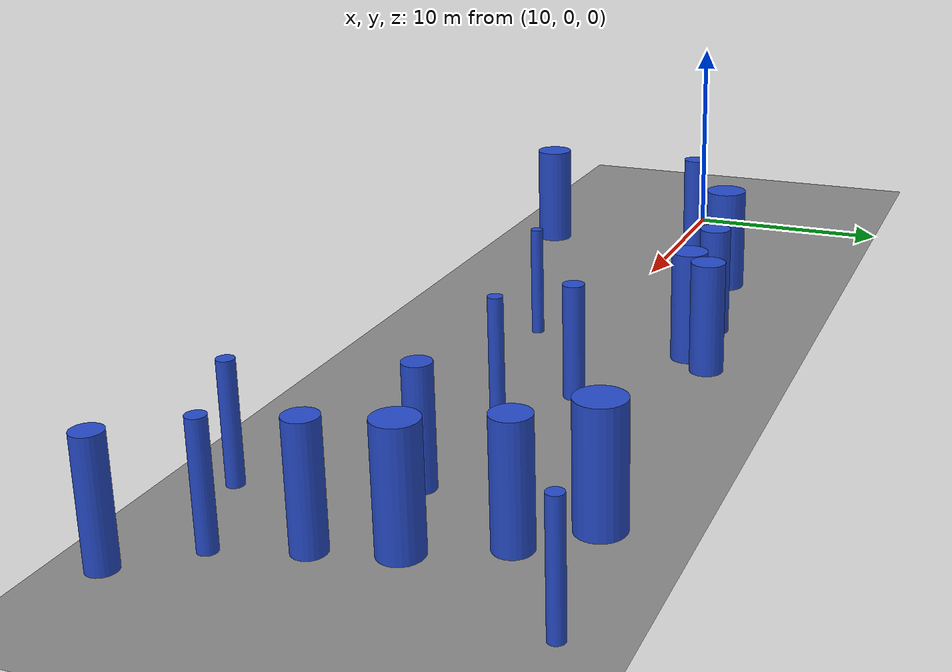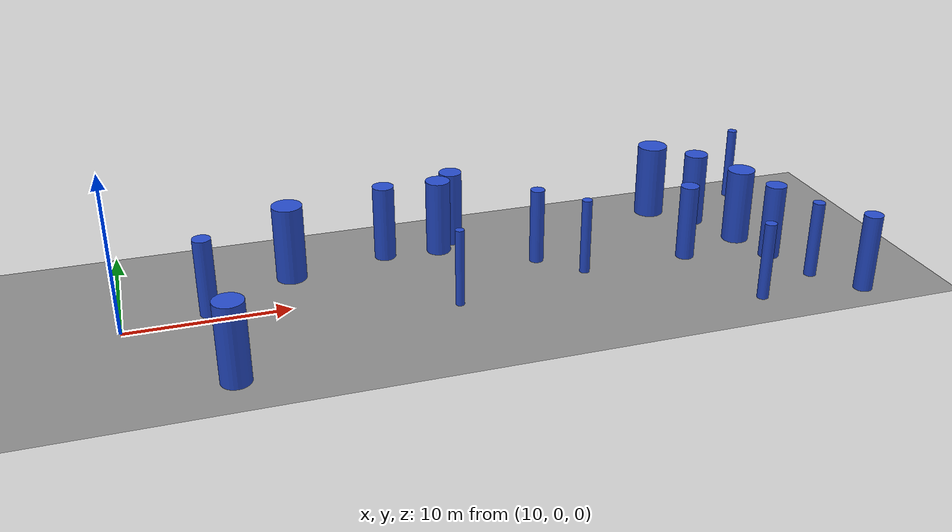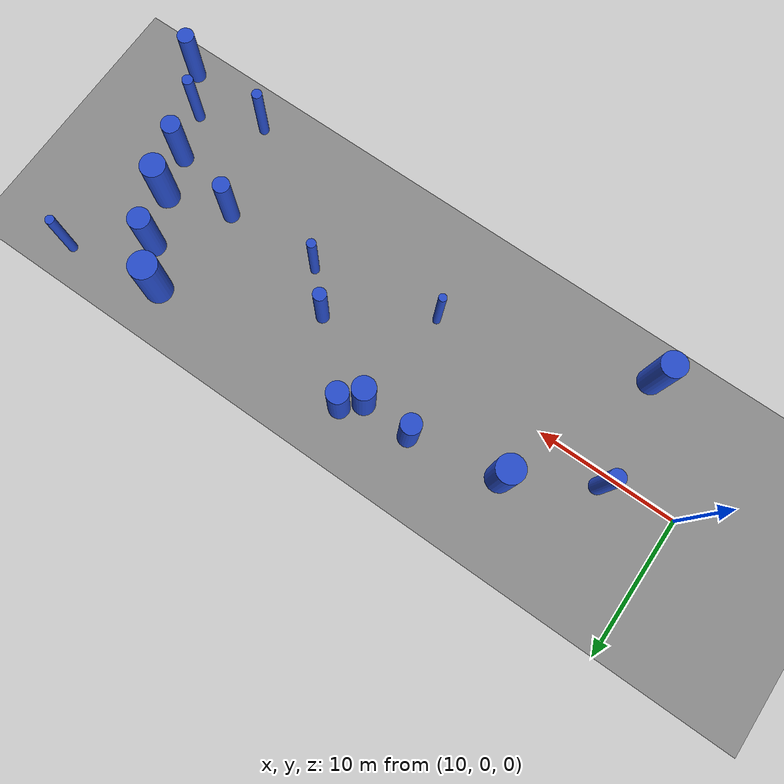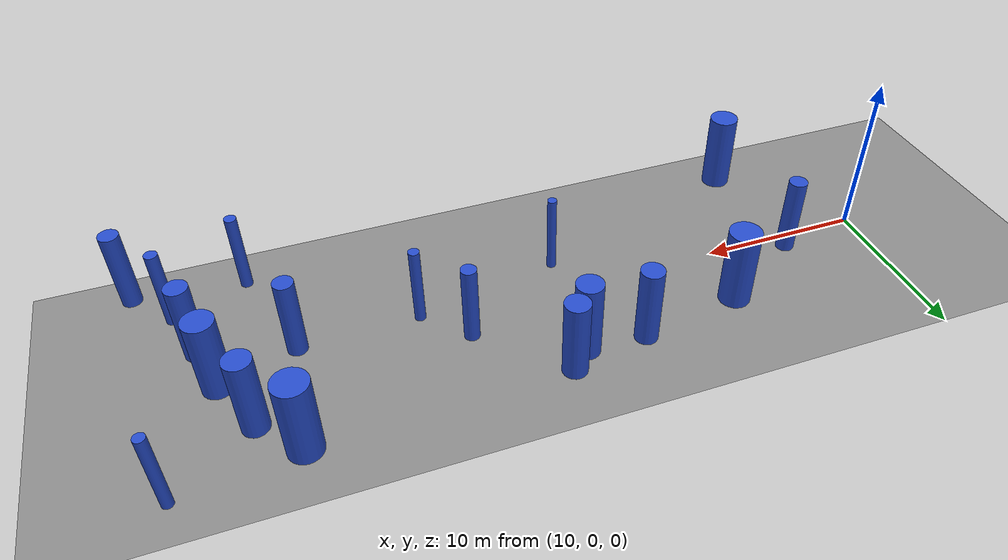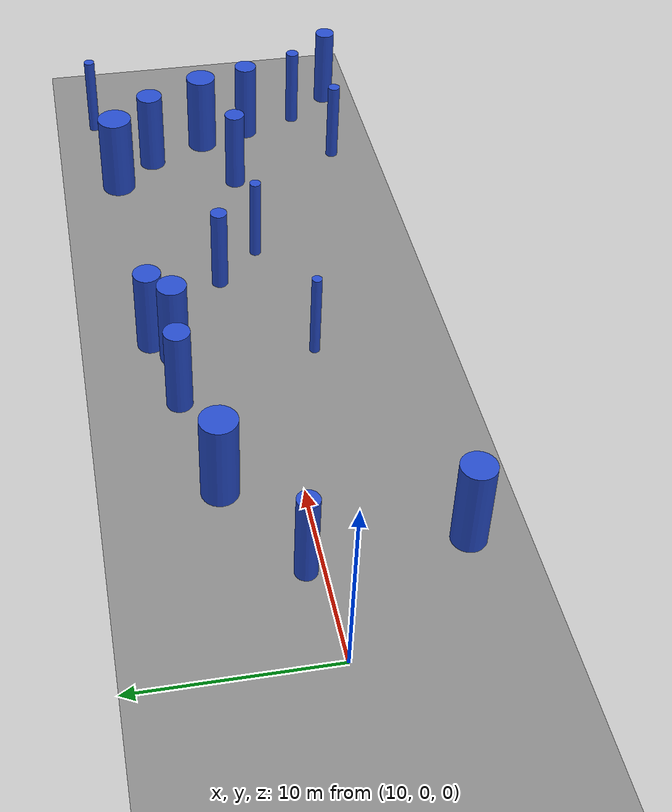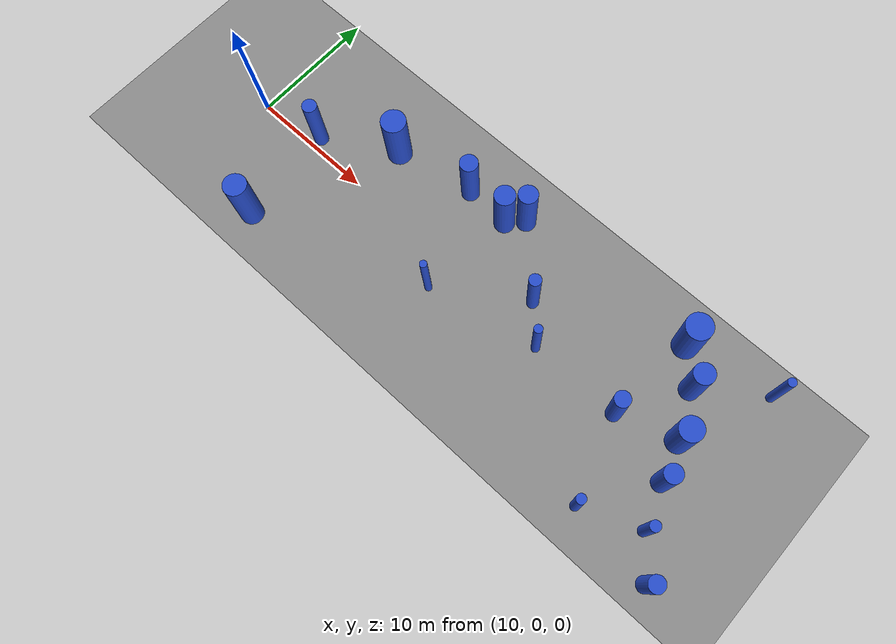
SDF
<sdf version="1.7">
 <world name="forest_randomization_v1">
  <gravity>0 0 -9.8</gravity>
  <light name="sun" type="directional">
   <pose>30 0 20 0 -0 0</pose>
   <diffuse>0.8 0.8 0.8 1</diffuse>
   <specular>0.2 0.2 0.2 1</specular>
   <direction>-0.5 0.5 -1</direction>
   <attenuation><range>10</range></attenuation>
   <spot><inner_angle>0</inner_angle><outer_angle>0</outer_angle><falloff>0</falloff></spot>
  </light>
  <model name="forest_ground_60x20">
   <static>1</static>
   <pose>30 0 0 0 -0 0</pose>
   <link name="link">
    <collision name="collision">
     <geometry><plane><normal>0 0 1</normal><size>60 20</size></plane></geometry>
    </collision>
    <visual name="visual">
     <cast_shadows>0</cast_shadows>
     <geometry><plane><normal>0 0 1</normal><size>60 20</size></plane></geometry>
     <material><ambient>0.45 0.45 0.45 1</ambient><diffuse>0.55 0.55 0.55 1</diffuse></material>
    </visual>
   </link>
  </model>
  <physics name="default_physics" type="ode">
   <max_step_size>0.001</max_step_size>
   <real_time_update_rate>1000</real_time_update_rate>
   <real_time_factor>1</real_time_factor>
  </physics>
  <scene>
   <ambient>0.4 0.4 0.4 1</ambient>
   <background>0.7 0.7 0.7 1</background>
   <shadows>1</shadows>
   <grid>1</grid>
  </scene>
  <magnetic_field>6e-06 2.3e-05 -4.2e-05</magnetic_field>
  <atmosphere type="adiabatic"/>
  <spherical_coordinates>
   <surface_model>EARTH_WGS84</surface_model>
   <latitude_deg>0</latitude_deg>
   <longitude_deg>0</longitude_deg>
   <elevation>0</elevation>
   <heading_deg>0</heading_deg>
  </spherical_coordinates>
  <model name="sparse_0">
   <static>0</static>
   <link name="link">
    <inertial>
     <mass>2</mass>
     <inertia><ixx>4.56643</ixx><ixy>0</ixy><ixz>0</ixz><iyy>4.56643</iyy><iyz>0</iyz><izz>0.799535</izz></inertia>
    </inertial>
    <collision name="collision">
     <geometry><cylinder><length>5</length><radius>0.894167</radius></cylinder></geometry>
     <surface><contact><collide_without_contact>1</collide_without_contact></contact></surface>
    </collision>
    <visual name="visual">
     <geometry><cylinder><length>5</length><radius>0.894167</radius></cylinder></geometry>
     <material>
      <script><uri>file://media/materials/scripts/gazebo.material</uri><name>Gazebo/Blue</name></script>
     </material>
    </visual>
    <gravity>0</gravity>
   </link>
   <pose>15.8183 -7.0455 2.5 0 -0 0</pose>
  </model>
  <model name="sparse_1">
   <static>0</static>
   <link name="link">
    <inertial>
     <mass>2</mass>
     <inertia><ixx>4.32672</ixx><ixy>0</ixy><ixz>0</ixz><iyy>4.32672</iyy><iyz>0</iyz><izz>0.320105</izz></inertia>
    </inertial>
    <collision name="collision">
     <geometry><cylinder><length>5</length><radius>0.565778</radius></cylinder></geometry>
     <surface><contact><collide_without_contact>1</collide_without_contact></contact></surface>
    </collision>
    <visual name="visual">
     <geometry><cylinder><length>5</length><radius>0.565778</radius></cylinder></geometry>
     <material>
      <script><uri>file://media/materials/scripts/gazebo.material</uri><name>Gazebo/Blue</name></script>
     </material>
    </visual>
    <gravity>0</gravity>
   </link>
   <pose>15.1477 0.882061 2.5 0 -0 0</pose>
  </model>
  <model name="sparse_2">
   <static>0</static>
   <link name="link">
    <inertial>
     <mass>2</mass>
     <inertia><ixx>4.63396</ixx><ixy>0</ixy><ixz>0</ixz><iyy>4.63396</iyy><iyz>0</iyz><izz>0.934591</izz></inertia>
    </inertial>
    <collision name="collision">
     <geometry><cylinder><length>5</length><radius>0.966742</radius></cylinder></geometry>
     <surface><contact><collide_without_contact>1</collide_without_contact></contact></surface>
    </collision>
    <visual name="visual">
     <geometry><cylinder><length>5</length><radius>0.966742</radius></cylinder></geometry>
     <material>
      <script><uri>file://media/materials/scripts/gazebo.material</uri><name>Gazebo/Blue</name></script>
     </material>
    </visual>
    <gravity>0</gravity>
   </link>
   <pose>20.5924 4.06393 2.5 0 -0 0</pose>
  </model>
  <model name="medium_3">
   <static>0</static>
   <link name="link">
    <inertial>
     <mass>2</mass>
     <inertia><ixx>4.48571</ixx><ixy>0</ixy><ixz>0</ixz><iyy>4.48571</iyy><iyz>0</iyz><izz>0.638089</izz></inertia>
    </inertial>
    <collision name="collision">
     <geometry><cylinder><length>5</length><radius>0.798805</radius></cylinder></geometry>
     <surface><contact><collide_without_contact>1</collide_without_contact></contact></surface>
    </collision>
    <visual name="visual">
     <geometry><cylinder><length>5</length><radius>0.798805</radius></cylinder></geometry>
     <material>
      <script><uri>file://media/materials/scripts/gazebo.material</uri><name>Gazebo/Blue</name></script>
     </material>
    </visual>
    <gravity>0</gravity>
   </link>
   <pose>30.5379 5.05928 2.5 0 -0 0</pose>
  </model>
  <model name="medium_4">
   <static>0</static>
   <link name="link">
    <inertial>
     <mass>2</mass>
     <inertia><ixx>4.21974</ixx><ixy>0</ixy><ixz>0</ixz><iyy>4.21974</iyy><iyz>0</iyz><izz>0.106155</izz></inertia>
    </inertial>
    <collision name="collision">
     <geometry><cylinder><length>5</length><radius>0.325815</radius></cylinder></geometry>
     <surface><contact><collide_without_contact>1</collide_without_contact></contact></surface>
    </collision>
    <visual name="visual">
     <geometry><cylinder><length>5</length><radius>0.325815</radius></cylinder></geometry>
     <material>
      <script><uri>file://media/materials/scripts/gazebo.material</uri><name>Gazebo/Blue</name></script>
     </material>
    </visual>
    <gravity>0</gravity>
   </link>
   <pose>38.6481 -0.704662 2.5 0 -0 0</pose>
  </model>
  <model name="medium_5">
   <static>0</static>
   <link name="link">
    <inertial>
     <mass>2</mass>
     <inertia><ixx>4.27429</ixx><ixy>0</ixy><ixz>0</ixz><iyy>4.27429</iyy><iyz>0</iyz><izz>0.215243</izz></inertia>
    </inertial>
    <collision name="collision">
     <geometry><cylinder><length>5</length><radius>0.463943</radius></cylinder></geometry>
     <surface><contact><collide_without_contact>1</collide_without_contact></contact></surface>
    </collision>
    <visual name="visual">
     <geometry><cylinder><length>5</length><radius>0.463943</radius></cylinder></geometry>
     <material>
      <script><uri>file://media/materials/scripts/gazebo.material</uri><name>Gazebo/Blue</name></script>
     </material>
    </visual>
    <gravity>0</gravity>
   </link>
   <pose>36.2429 1.74575 2.5 0 -0 0</pose>
  </model>
  <model name="medium_6">
   <static>0</static>
   <link name="link">
    <inertial>
     <mass>2</mass>
     <inertia><ixx>4.40986</ixx><ixy>0</ixy><ixz>0</ixz><iyy>4.40986</iyy><iyz>0</iyz><izz>0.486388</izz></inertia>
    </inertial>
    <collision name="collision">
     <geometry><cylinder><length>5</length><radius>0.697415</radius></cylinder></geometry>
     <surface><contact><collide_without_contact>1</collide_without_contact></contact></surface>
    </collision>
    <visual name="visual">
     <geometry><cylinder><length>5</length><radius>0.697415</radius></cylinder></geometry>
     <material>
      <script><uri>file://media/materials/scripts/gazebo.material</uri><name>Gazebo/Blue</name></script>
     </material>
    </visual>
    <gravity>0</gravity>
   </link>
   <pose>26.9462 5.23295 2.5 0 -0 0</pose>
  </model>
  <model name="medium_7">
   <static>0</static>
   <link name="link">
    <inertial>
     <mass>2</mass>
     <inertia>
      <ixx>4.20561</ixx>
      <ixy>0</ixy>
      <ixz>0</ixz>
      <iyy>4.20561</iyy>
      <iyz>0</iyz>
      <izz>0.0778935</izz>
     </inertia>
    </inertial>
    <collision name="collision">
     <geometry><cylinder><length>5</length><radius>0.279094</radius></cylinder></geometry>
     <surface><contact><collide_without_contact>1</collide_without_contact></contact></surface>
    </collision>
    <visual name="visual">
     <geometry><cylinder><length>5</length><radius>0.279094</radius></cylinder></geometry>
     <material>
      <script><uri>file://media/materials/scripts/gazebo.material</uri><name>Gazebo/Blue</name></script>
     </material>
    </visual>
    <gravity>0</gravity>
   </link>
   <pose>29.8037 -2.47702 2.5 0 -0 0</pose>
  </model>
  <model name="medium_8">
   <static>0</static>
   <link name="link">
    <inertial>
     <mass>2</mass>
     <inertia><ixx>4.44572</ixx><ixy>0</ixy><ixz>0</ixz><iyy>4.44572</iyy><iyz>0</iyz><izz>0.558105</izz></inertia>
    </inertial>
    <collision name="collision">
     <geometry><cylinder><length>5</length><radius>0.747064</radius></cylinder></geometry>
     <surface><contact><collide_without_contact>1</collide_without_contact></contact></surface>
    </collision>
    <visual name="visual">
     <geometry><cylinder><length>5</length><radius>0.747064</radius></cylinder></geometry>
     <material>
      <script><uri>file://media/materials/scripts/gazebo.material</uri><name>Gazebo/Blue</name></script>
     </material>
    </visual>
    <gravity>0</gravity>
   </link>
   <pose>31.7128 6.21179 2.5 0 -0 0</pose>
  </model>
  <model name="dense_9">
   <static>0</static>
   <link name="link">
    <inertial>
     <mass>2</mass>
     <inertia><ixx>4.55931</ixx><ixy>0</ixy><ixz>0</ixz><iyy>4.55931</iyy><iyz>0</iyz><izz>0.78529</izz></inertia>
    </inertial>
    <collision name="collision">
     <geometry><cylinder><length>5</length><radius>0.886166</radius></cylinder></geometry>
     <surface><contact><collide_without_contact>1</collide_without_contact></contact></surface>
    </collision>
    <visual name="visual">
     <geometry><cylinder><length>5</length><radius>0.886166</radius></cylinder></geometry>
     <material>
      <script><uri>file://media/materials/scripts/gazebo.material</uri><name>Gazebo/Blue</name></script>
     </material>
    </visual>
    <gravity>0</gravity>
   </link>
   <pose>50.2718 0.823805 2.5 0 -0 0</pose>
  </model>
  <model name="dense_10">
   <static>0</static>
   <link name="link">
    <inertial>
     <mass>2</mass>
     <inertia><ixx>4.46914</ixx><ixy>0</ixy><ixz>0</ixz><iyy>4.46914</iyy><iyz>0</iyz><izz>0.604948</izz></inertia>
    </inertial>
    <collision name="collision">
     <geometry><cylinder><length>5</length><radius>0.777784</radius></cylinder></geometry>
     <surface><contact><collide_without_contact>1</collide_without_contact></contact></surface>
    </collision>
    <visual name="visual">
     <geometry><cylinder><length>5</length><radius>0.777784</radius></cylinder></geometry>
     <material>
      <script><uri>file://media/materials/scripts/gazebo.material</uri><name>Gazebo/Blue</name></script>
     </material>
    </visual>
    <gravity>0</gravity>
   </link>
   <pose>48.702 4.233 2.5 0 -0 0</pose>
  </model>
  <model name="dense_11">
   <static>0</static>
   <link name="link">
    <inertial>
     <mass>2</mass>
     <inertia><ixx>4.2312</ixx><ixy>0</ixy><ixz>0</ixz><iyy>4.2312</iyy><iyz>0</iyz><izz>0.129074</izz></inertia>
    </inertial>
    <collision name="collision">
     <geometry><cylinder><length>5</length><radius>0.359269</radius></cylinder></geometry>
     <surface><contact><collide_without_contact>1</collide_without_contact></contact></surface>
    </collision>
    <visual name="visual">
     <geometry><cylinder><length>5</length><radius>0.359269</radius></cylinder></geometry>
     <material>
      <script><uri>file://media/materials/scripts/gazebo.material</uri><name>Gazebo/Blue</name></script>
     </material>
    </visual>
    <gravity>0</gravity>
   </link>
   <pose>47.8074 -7.20108 2.5 0 -0 0</pose>
  </model>
  <model name="dense_12">
   <static>0</static>
   <link name="link">
    <inertial>
     <mass>2</mass>
     <inertia><ixx>4.39202</ixx><ixy>0</ixy><ixz>0</ixz><iyy>4.39202</iyy><iyz>0</iyz><izz>0.450703</izz></inertia>
    </inertial>
    <collision name="collision">
     <geometry><cylinder><length>5</length><radius>0.671344</radius></cylinder></geometry>
     <surface><contact><collide_without_contact>1</collide_without_contact></contact></surface>
    </collision>
    <visual name="visual">
     <geometry><cylinder><length>5</length><radius>0.671344</radius></cylinder></geometry>
     <material>
      <script><uri>file://media/materials/scripts/gazebo.material</uri><name>Gazebo/Blue</name></script>
     </material>
    </visual>
    <gravity>0</gravity>
   </link>
   <pose>51.1377 -2.16019 2.5 0 -0 0</pose>
  </model>
  <model name="dense_13">
   <static>0</static>
   <link name="link">
    <inertial>
     <mass>2</mass>
     <inertia><ixx>4.66339</ixx><ixy>0</ixy><ixz>0</ixz><iyy>4.66339</iyy><iyz>0</iyz><izz>0.993437</izz></inertia>
    </inertial>
    <collision name="collision">
     <geometry><cylinder><length>5</length><radius>0.996713</radius></cylinder></geometry>
     <surface><contact><collide_without_contact>1</collide_without_contact></contact></surface>
    </collision>
    <visual name="visual">
     <geometry><cylinder><length>5</length><radius>0.996713</radius></cylinder></geometry>
     <material>
      <script><uri>file://media/materials/scripts/gazebo.material</uri><name>Gazebo/Blue</name></script>
     </material>
    </visual>
    <gravity>0</gravity>
   </link>
   <pose>46.5152 6.57453 2.5 0 -0 0</pose>
  </model>
  <model name="dense_14">
   <static>0</static>
   <link name="link">
    <inertial>
     <mass>2</mass>
     <inertia><ixx>4.21777</ixx><ixy>0</ixy><ixz>0</ixz><iyy>4.21777</iyy><iyz>0</iyz><izz>0.102197</izz></inertia>
    </inertial>
    <collision name="collision">
     <geometry><cylinder><length>5</length><radius>0.319682</radius></cylinder></geometry>
     <surface><contact><collide_without_contact>1</collide_without_contact></contact></surface>
    </collision>
    <visual name="visual">
     <geometry><cylinder><length>5</length><radius>0.319682</radius></cylinder></geometry>
     <material>
      <script><uri>file://media/materials/scripts/gazebo.material</uri><name>Gazebo/Blue</name></script>
     </material>
    </visual>
    <gravity>0</gravity>
   </link>
   <pose>53.2805 7.57113 2.5 0 -0 0</pose>
  </model>
  <model name="dense_15">
   <static>0</static>
   <link name="link">
    <inertial>
     <mass>2</mass>
     <inertia><ixx>4.34024</ixx><ixy>0</ixy><ixz>0</ixz><iyy>4.34024</iyy><iyz>0</iyz><izz>0.347154</izz></inertia>
    </inertial>
    <collision name="collision">
     <geometry><cylinder><length>5</length><radius>0.589197</radius></cylinder></geometry>
     <surface><contact><collide_without_contact>1</collide_without_contact></contact></surface>
    </collision>
    <visual name="visual">
     <geometry><cylinder><length>5</length><radius>0.589197</radius></cylinder></geometry>
     <material>
      <script><uri>file://media/materials/scripts/gazebo.material</uri><name>Gazebo/Blue</name></script>
     </material>
    </visual>
    <gravity>0</gravity>
   </link>
   <pose>45.7791 -0.624634 2.5 0 -0 0</pose>
  </model>
  <model name="dense_16">
   <static>0</static>
   <link name="link">
    <inertial>
     <mass>2</mass>
     <inertia><ixx>4.34014</ixx><ixy>0</ixy><ixz>0</ixz><iyy>4.34014</iyy><iyz>0</iyz><izz>0.346937</izz></inertia>
    </inertial>
    <collision name="collision">
     <geometry><cylinder><length>5</length><radius>0.589014</radius></cylinder></geometry>
     <surface><contact><collide_without_contact>1</collide_without_contact></contact></surface>
    </collision>
    <visual name="visual">
     <geometry><cylinder><length>5</length><radius>0.589014</radius></cylinder></geometry>
     <material>
      <script><uri>file://media/materials/scripts/gazebo.material</uri><name>Gazebo/Blue</name></script>
     </material>
    </visual>
    <gravity>0</gravity>
   </link>
   <pose>54.403 -7.97923 2.5 0 -0 0</pose>
  </model>
  <model name="dense_17">
   <static>0</static>
   <link name="link">
    <inertial>
     <mass>2</mass>
     <inertia><ixx>4.24113</ixx><ixy>0</ixy><ixz>0</ixz><iyy>4.24113</iyy><iyz>0</iyz><izz>0.14893</izz></inertia>
    </inertial>
    <collision name="collision">
     <geometry><cylinder><length>5</length><radius>0.385914</radius></cylinder></geometry>
     <surface><contact><collide_without_contact>1</collide_without_contact></contact></surface>
    </collision>
    <visual name="visual">
     <geometry><cylinder><length>5</length><radius>0.385914</radius></cylinder></geometry>
     <material>
      <script><uri>file://media/materials/scripts/gazebo.material</uri><name>Gazebo/Blue</name></script>
     </material>
    </visual>
    <gravity>0</gravity>
   </link>
   <pose>52.2366 -5.40122 2.5 0 -0 0</pose>
  </model>
 </world>
</sdf>
